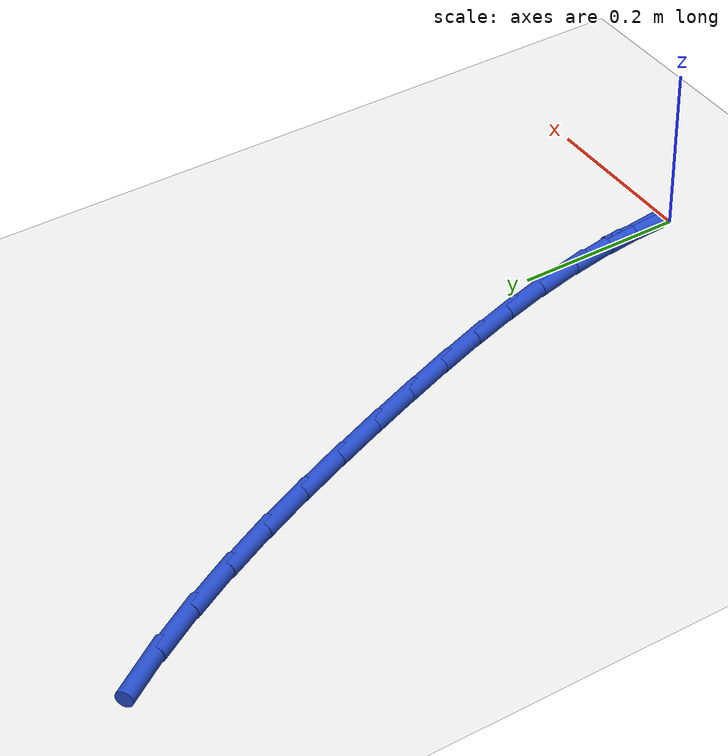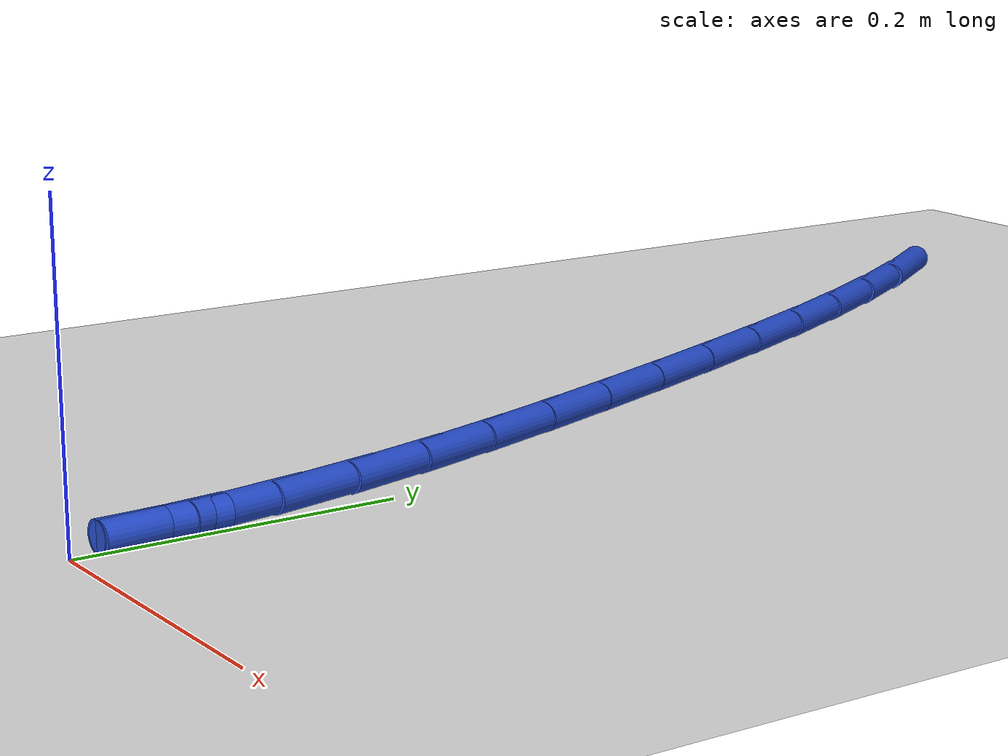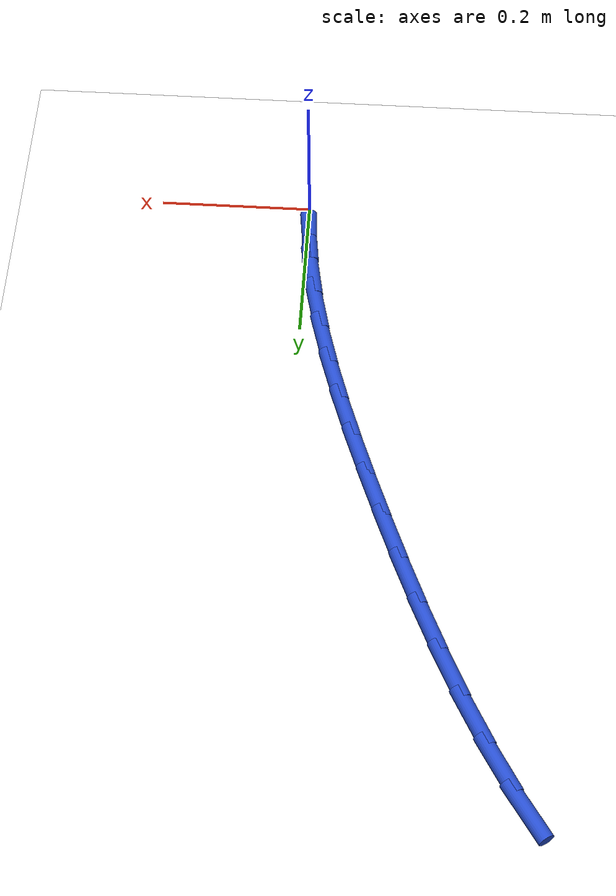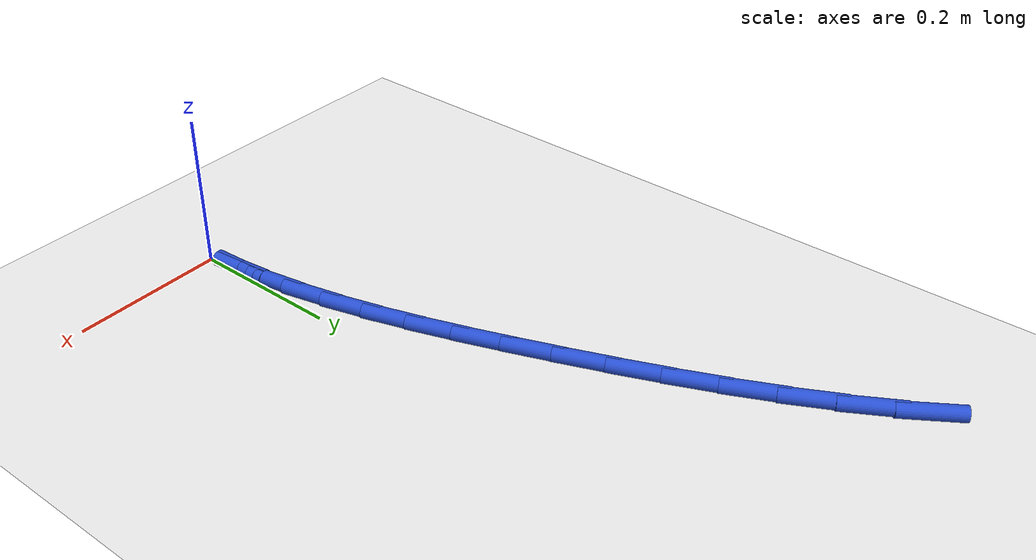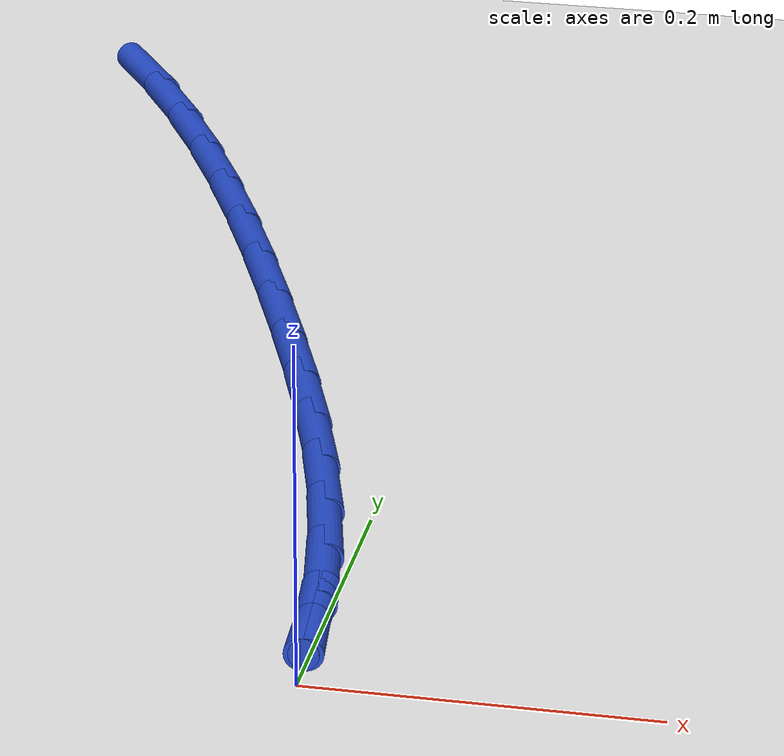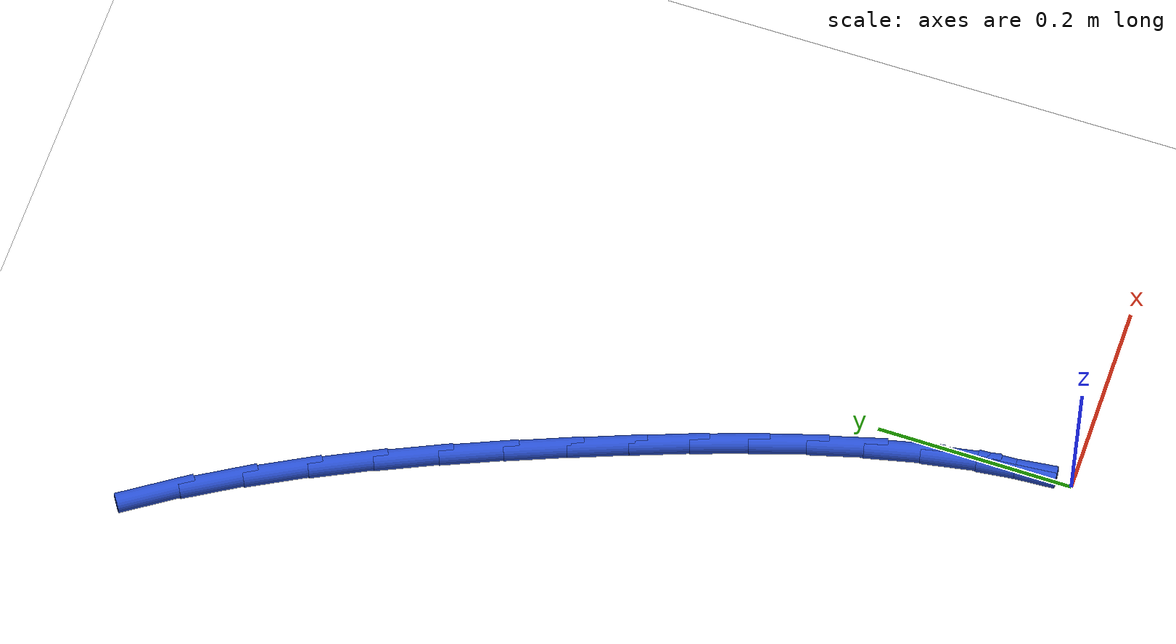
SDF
<sdf version="1.6">
 <world name="default">
  <model name="ground_plane">
   <static>1</static>
   <link name="link">
    <collision name="collision">
     <geometry><plane><normal>0 0 1</normal><size>100 100</size></plane></geometry>
     <surface><friction><ode><mu>100</mu><mu2>50</mu2></ode></friction></surface>
    </collision>
    <visual name="visual">
     <cast_shadows>0</cast_shadows>
     <geometry><plane><normal>0 0 1</normal><size>100 100</size></plane></geometry>
     <material>
      <script><uri>file://media/materials/scripts/gazebo.material</uri><name>Gazebo/WhiteGlow</name></script>
     </material>
    </visual>
   </link>
  </model>
  <model name="line">
   <link name="link_1">
    <pose>-0.0032267874419183223 0.056120624948281364 0.01 0 1.57 -1.449108801340831</pose>
    <collision name="collision">
     <geometry><cylinder><radius>0.01</radius><length>0.08</length></cylinder></geometry>
    </collision>
    <visual name="visual">
     <material>
      <script><name>Gazebo/Blue</name><uri>file://media/materials/scripts/gazebo.material</uri></script>
     </material>
     <geometry><cylinder><radius>0.01</radius><length>0.08</length></cylinder></geometry>
    </visual>
   </link>
   <link name="link_2">
    <pose>-0.010016792119888478 0.11164362443332468 0.01 0 1.57 -1.3909887435095127</pose>
    <collision name="collision">
     <geometry><cylinder><radius>0.01</radius><length>0.08</length></cylinder></geometry>
    </collision>
    <visual name="visual">
     <material>
      <script><name>Gazebo/Blue</name><uri>file://media/materials/scripts/gazebo.material</uri></script>
     </material>
     <geometry><cylinder><radius>0.01</radius><length>0.08</length></cylinder></geometry>
    </visual>
   </link>
   <link name="link_3">
    <pose>-0.020046200305890917 0.16681976419761146 0.01 0 1.57 -1.3399639403255956</pose>
    <collision name="collision">
     <geometry><cylinder><radius>0.01</radius><length>0.08</length></cylinder></geometry>
    </collision>
    <visual name="visual">
     <material>
      <script><name>Gazebo/Blue</name><uri>file://media/materials/scripts/gazebo.material</uri></script>
     </material>
     <geometry><cylinder><radius>0.01</radius><length>0.08</length></cylinder></geometry>
    </visual>
   </link>
   <link name="link_4">
    <pose>-0.03299119827190608 0.22189980998362302 0.01 0 1.57 -1.296595158268125</pose>
    <collision name="collision">
     <geometry><cylinder><radius>0.01</radius><length>0.08</length></cylinder></geometry>
    </collision>
    <visual name="visual">
     <material>
      <script><name>Gazebo/Blue</name><uri>file://media/materials/scripts/gazebo.material</uri></script>
     </material>
     <geometry><cylinder><radius>0.01</radius><length>0.08</length></cylinder></geometry>
    </visual>
   </link>
   <link name="link_5">
    <pose>-0.04852797228991441 0.2771345275338408 0.01 0 1.57 -1.2610952290168598</pose>
    <collision name="collision">
     <geometry><cylinder><radius>0.01</radius><length>0.08</length></cylinder></geometry>
    </collision>
    <visual name="visual">
     <material>
      <script><name>Gazebo/Blue</name><uri>file://media/materials/scripts/gazebo.material</uri></script>
     </material>
     <geometry><cylinder><radius>0.01</radius><length>0.08</length></cylinder></geometry>
    </visual>
   </link>
   <link name="link_6">
    <pose>-0.0663327086318964 0.3327746825907464 0.01 0 1.57 -1.2334070537197557</pose>
    <collision name="collision">
     <geometry><cylinder><radius>0.01</radius><length>0.08</length></cylinder></geometry>
    </collision>
    <visual name="visual">
     <material>
      <script><name>Gazebo/Blue</name><uri>file://media/materials/scripts/gazebo.material</uri></script>
     </material>
     <geometry><cylinder><radius>0.01</radius><length>0.08</length></cylinder></geometry>
    </visual>
   </link>
   <link name="link_7">
    <pose>-0.08608159356983244 0.389071040896821 0.01 0 1.57 -1.2132834291647048</pose>
    <collision name="collision">
     <geometry><cylinder><radius>0.01</radius><length>0.08</length></cylinder></geometry>
    </collision>
    <visual name="visual">
     <material>
      <script><name>Gazebo/Blue</name><uri>file://media/materials/scripts/gazebo.material</uri></script>
     </material>
     <geometry><cylinder><radius>0.01</radius><length>0.08</length></cylinder></geometry>
    </visual>
   </link>
   <link name="link_8">
    <pose>-0.107450813375703 0.4462743681945463 0.01 0 1.57 -1.1997400604718662</pose>
    <collision name="collision">
     <geometry><cylinder><radius>0.01</radius><length>0.08</length></cylinder></geometry>
    </collision>
    <visual name="visual">
     <material>
      <script><name>Gazebo/Blue</name><uri>file://media/materials/scripts/gazebo.material</uri></script>
     </material>
     <geometry><cylinder><radius>0.01</radius><length>0.08</length></cylinder></geometry>
    </visual>
   </link>
   <link name="link_9">
    <pose>-0.1301401286069697 0.5045898393704478 0.01 0 1.57 -1.1856798796184538</pose>
    <collision name="collision">
     <geometry><cylinder><radius>0.01</radius><length>0.08</length></cylinder></geometry>
    </collision>
    <visual name="visual">
     <material>
      <script><name>Gazebo/Blue</name><uri>file://media/materials/scripts/gazebo.material</uri></script>
     </material>
     <geometry><cylinder><radius>0.01</radius><length>0.08</length></cylinder></geometry>
    </visual>
   </link>
   <link name="link_10">
    <pose>-0.15410908199424203 0.563720230557748 0.01 0 1.57 -1.1667701097912226</pose>
    <collision name="collision">
     <geometry><cylinder><radius>0.01</radius><length>0.08</length></cylinder></geometry>
    </collision>
    <visual name="visual">
     <material>
      <script><name>Gazebo/Blue</name><uri>file://media/materials/scripts/gazebo.material</uri></script>
     </material>
     <geometry><cylinder><radius>0.01</radius><length>0.08</length></cylinder></geometry>
    </visual>
   </link>
   <link name="link_11">
    <pose>-0.179478281973173 0.6230568291973017 0.01 0 1.57 -1.1426741639353926</pose>
    <collision name="collision">
     <geometry><cylinder><radius>0.01</radius><length>0.08</length></cylinder></geometry>
    </collision>
    <visual name="visual">
     <material>
      <script><name>Gazebo/Blue</name><uri>file://media/materials/scripts/gazebo.material</uri></script>
     </material>
     <geometry><cylinder><radius>0.01</radius><length>0.08</length></cylinder></geometry>
    </visual>
   </link>
   <link name="link_12">
    <pose>-0.20637074248024226 0.6819862706762779 0.01 0 1.57 -1.1129083485676599</pose>
    <collision name="collision">
     <geometry><cylinder><radius>0.01</radius><length>0.08</length></cylinder></geometry>
    </collision>
    <visual name="visual">
     <material>
      <script><name>Gazebo/Blue</name><uri>file://media/materials/scripts/gazebo.material</uri></script>
     </material>
     <geometry><cylinder><radius>0.01</radius><length>0.08</length></cylinder></geometry>
    </visual>
   </link>
   <link name="link_13">
    <pose>-0.23490947745192928 0.739895190381845 0.01 0 1.57 -1.0767711728129166</pose>
    <collision name="collision">
     <geometry><cylinder><radius>0.01</radius><length>0.08</length></cylinder></geometry>
    </collision>
    <visual name="visual">
     <material>
      <script><name>Gazebo/Blue</name><uri>file://media/materials/scripts/gazebo.material</uri></script>
     </material>
     <geometry><cylinder><radius>0.01</radius><length>0.08</length></cylinder></geometry>
    </visual>
   </link>
   <link name="link_14">
    <pose>-0.2652175008247136 0.7961702237011721 0.01 0 1.57 -1.0333263700707842</pose>
    <collision name="collision">
     <geometry><cylinder><radius>0.01</radius><length>0.08</length></cylinder></geometry>
    </collision>
    <visual name="visual">
     <material>
      <script><name>Gazebo/Blue</name><uri>file://media/materials/scripts/gazebo.material</uri></script>
     </material>
     <geometry><cylinder><radius>0.01</radius><length>0.08</length></cylinder></geometry>
    </visual>
   </link>
   <link name="link_15">
    <pose>-0.29741782653507487 0.8501980060214275 0.01 0 1.57 -0.9813852232318457</pose>
    <collision name="collision">
     <geometry><cylinder><radius>0.01</radius><length>0.08</length></cylinder></geometry>
    </collision>
    <visual name="visual">
     <material>
      <script><name>Gazebo/Blue</name><uri>file://media/materials/scripts/gazebo.material</uri></script>
     </material>
     <geometry><cylinder><radius>0.01</radius><length>0.08</length></cylinder></geometry>
    </visual>
   </link>
   <link name="link_131">
    <pose>-0.00329607508783087 0.05601863612961411 0.01 0 1.57 -1.5120251836877545</pose>
    <collision name="collision">
     <geometry><cylinder><radius>0.01</radius><length>0.08</length></cylinder></geometry>
    </collision>
    <visual name="visual">
     <material>
      <script><name>Gazebo/Blue</name><uri>file://media/materials/scripts/gazebo.material</uri></script>
     </material>
     <geometry><cylinder><radius>0.01</radius><length>0.08</length></cylinder></geometry>
    </visual>
   </link>
  </model>
 </world>
</sdf>
